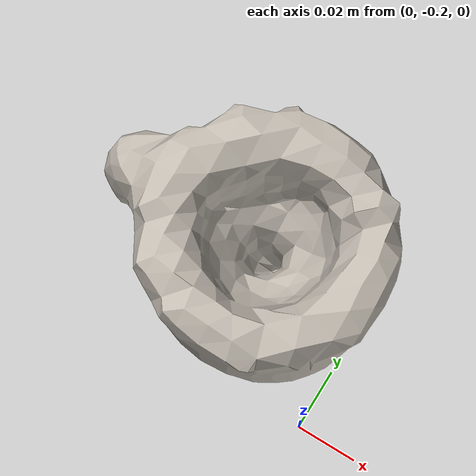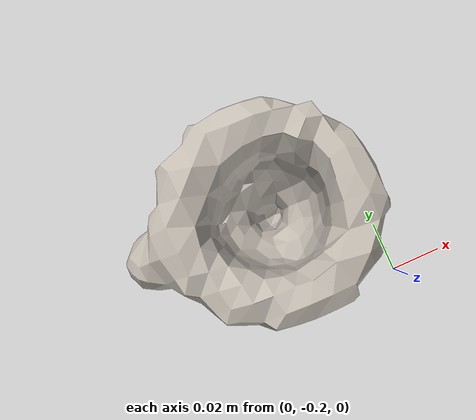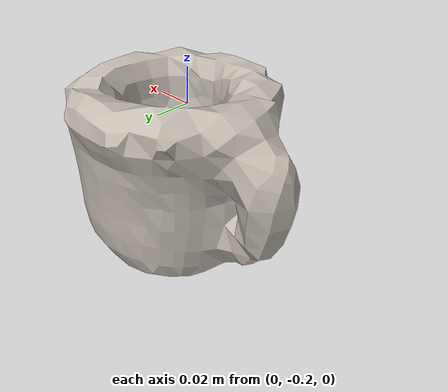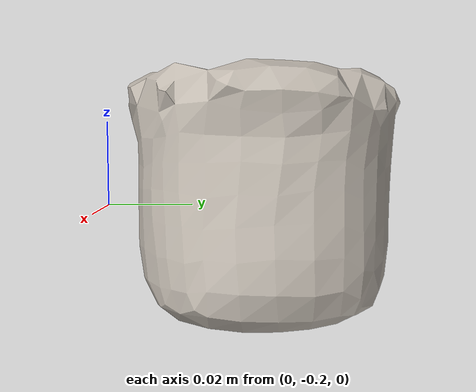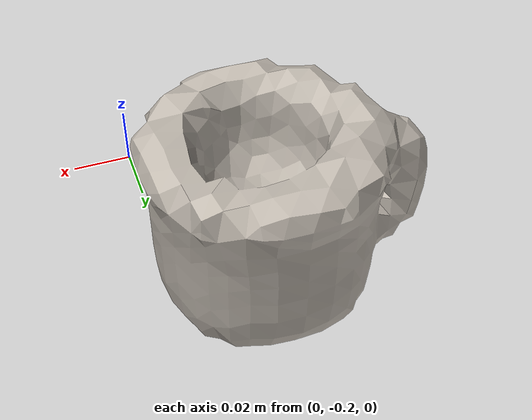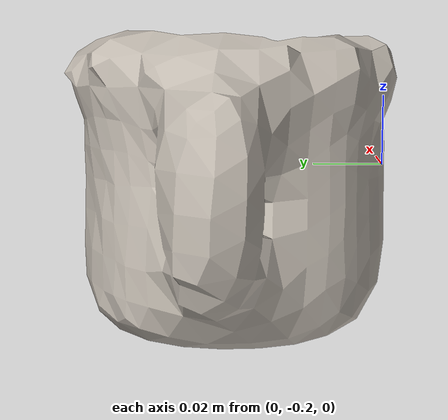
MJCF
<mujoco model="mug_025_mug_M">
  <asset>
    <mesh file="meshes/mug_025_mug_M.stl" name="mug_mesh" scale="0.6073515030529864 0.6073515030529864 0.6073515030529864"/>
    <texture type="cube" file="/home/jbw/Projects/gc-reorientation/bin_env/assets/textures/ceramic.png" rgb1="1 1 1" name="tex-mug"/>
    <material name="mug" reflectance="0.5" texrepeat="3 3" texture="tex-mug"/>
  </asset>
  <worldbody>
    <body>
      <body name="object">
        <geom pos="-0.03904770362200557 -0.15859955235378947 -0.0022862519347721867" quat="1 0 0 0" mesh="mug_mesh" type="mesh" solref="0.02 1" density="0" friction="1.0 1.0 1.0" material="mug" group="0" condim="4"/>
      </body>
      <site rgba="0 0 0 0" size="0.005" pos="0 0 -0.05" name="bottom_site"/>
      <site rgba="0 0 0 0" size="0.005" pos="0 0 0.03" name="top_site"/>
      <site rgba="0 0 0 0" size="0.005" pos="0.02 0.015 0" name="horizontal_radius_site"/>
    </body>
  </worldbody>
</mujoco>
